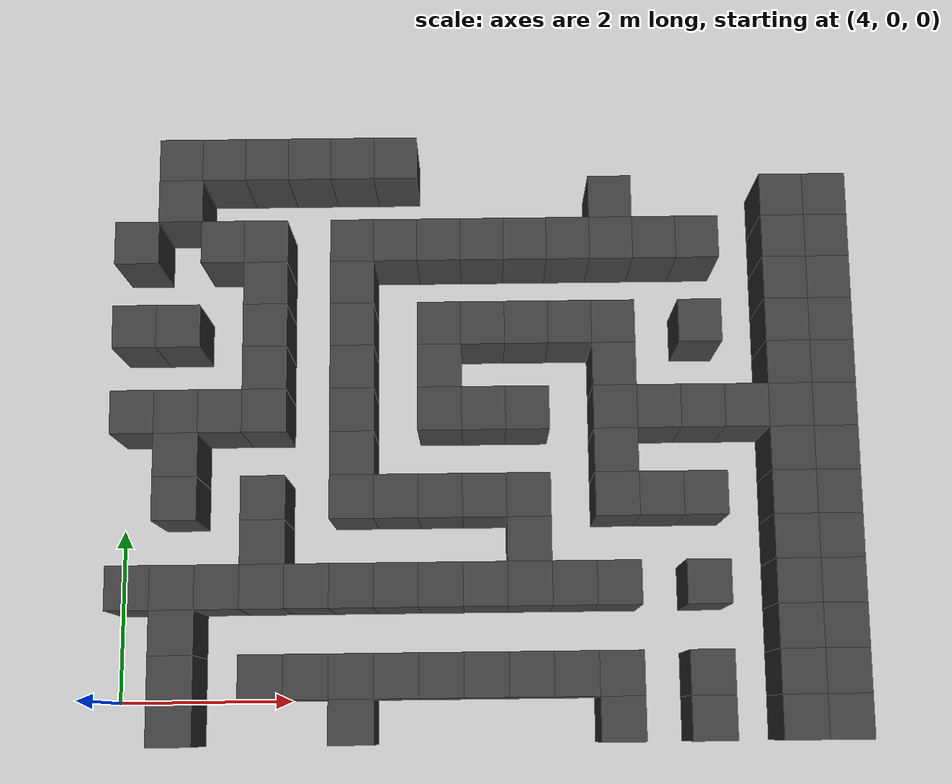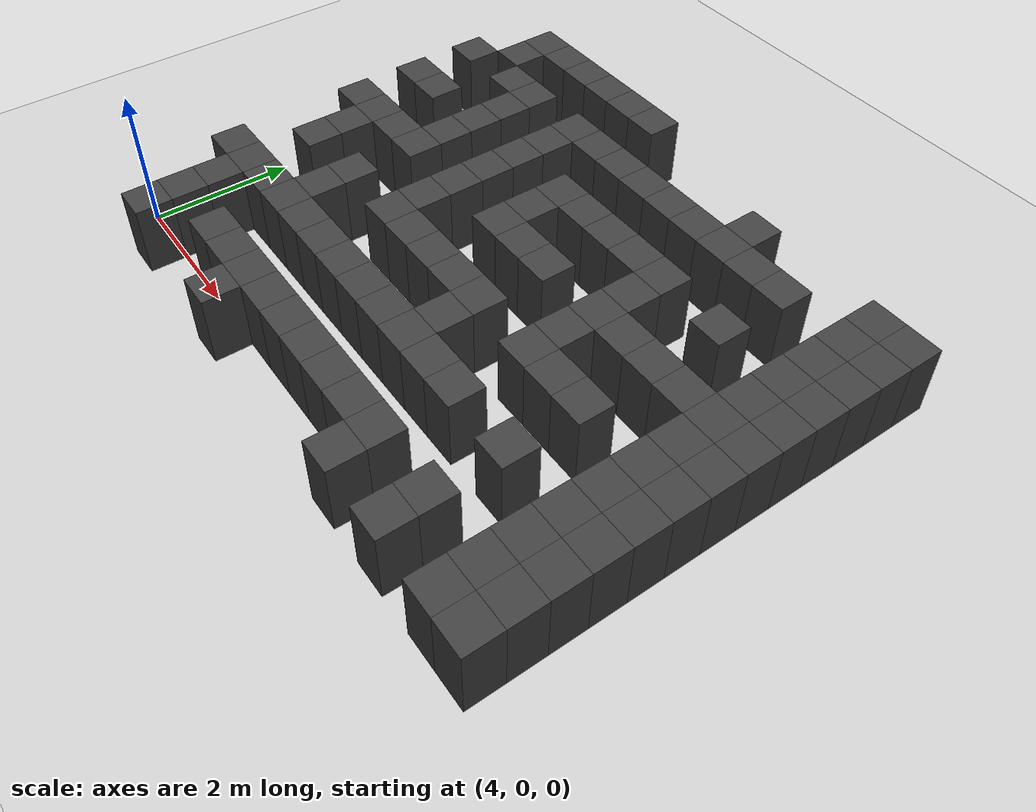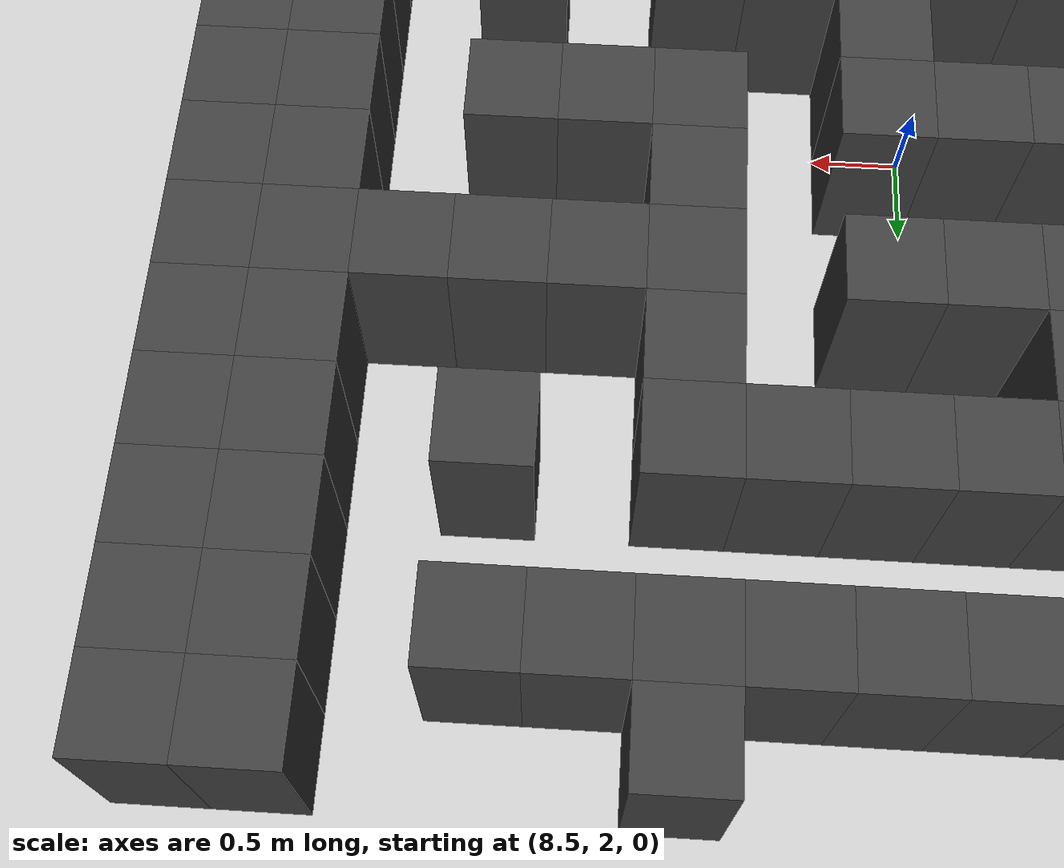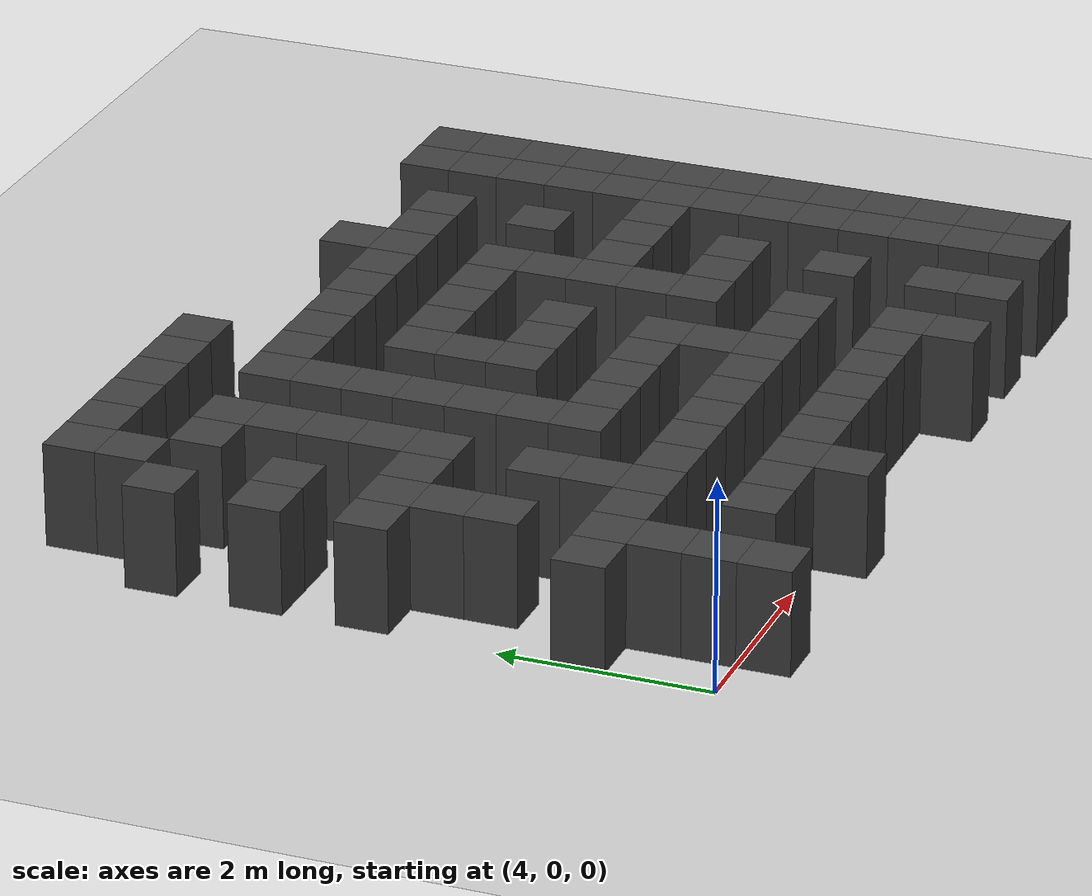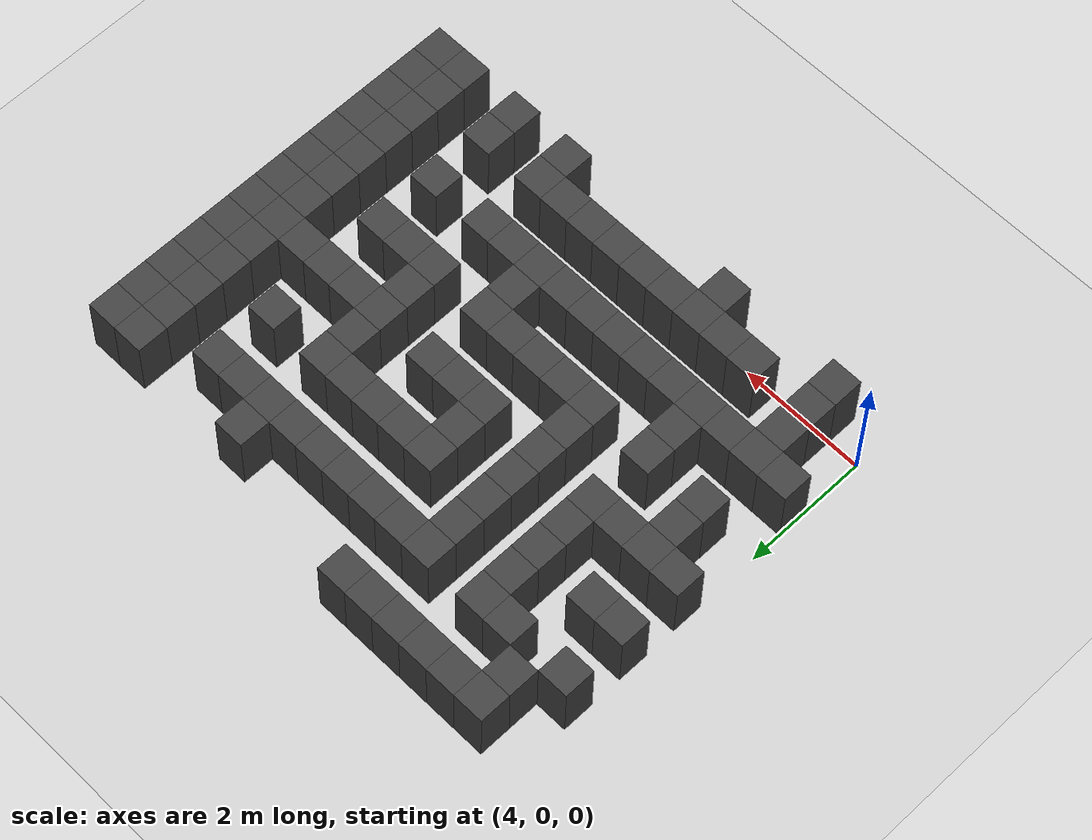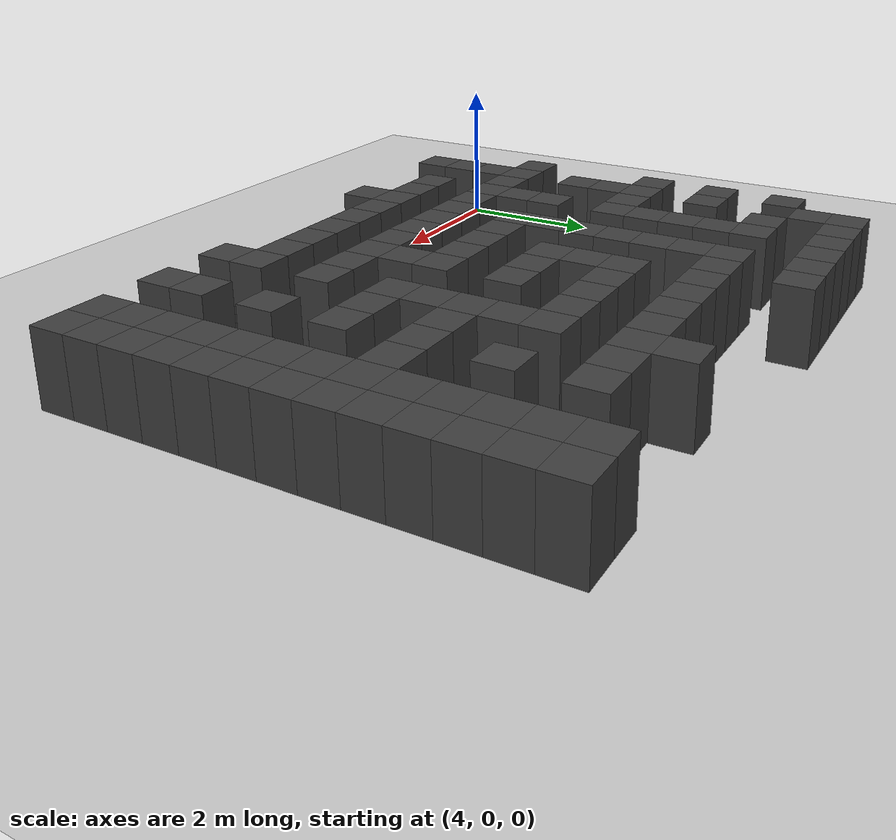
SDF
<sdf version="1.7">
 <world name="map_18228">
  <model name="ground_plane">
   <static>true</static>
   <link name="link">
    <collision name="collision">
     <geometry><plane><normal>0 0 1</normal><size>200 200</size></plane></geometry>
    </collision>
    <visual name="visual">
     <geometry><plane><normal>0 0 1</normal><size>200 200</size></plane></geometry>
     <material><ambient>0.8 0.8 0.8 1</ambient><diffuse>0.8 0.8 0.8 1</diffuse></material>
    </visual>
   </link>
  </model>
  <model name="maze_environment">
   <static>true</static>
   <link name="wall_325">
    <pose>4.750 6.250 0.500 0 0 0</pose>
    <collision name="col"><geometry><box><size>0.5 0.5 1.0</size></box></geometry></collision>
    <visual name="vis">
     <geometry><box><size>0.5 0.5 1.0</size></box></geometry>
     <material><ambient>0.15 0.15 0.15 1</ambient><diffuse>0.25 0.25 0.25 1</diffuse></material>
    </visual>
   </link>
   <link name="wall_326">
    <pose>5.250 6.250 0.500 0 0 0</pose>
    <collision name="col"><geometry><box><size>0.5 0.5 1.0</size></box></geometry></collision>
    <visual name="vis">
     <geometry><box><size>0.5 0.5 1.0</size></box></geometry>
     <material><ambient>0.15 0.15 0.15 1</ambient><diffuse>0.25 0.25 0.25 1</diffuse></material>
    </visual>
   </link>
   <link name="wall_327">
    <pose>5.750 6.250 0.500 0 0 0</pose>
    <collision name="col"><geometry><box><size>0.5 0.5 1.0</size></box></geometry></collision>
    <visual name="vis">
     <geometry><box><size>0.5 0.5 1.0</size></box></geometry>
     <material><ambient>0.15 0.15 0.15 1</ambient><diffuse>0.25 0.25 0.25 1</diffuse></material>
    </visual>
   </link>
   <link name="wall_328">
    <pose>6.250 6.250 0.500 0 0 0</pose>
    <collision name="col"><geometry><box><size>0.5 0.5 1.0</size></box></geometry></collision>
    <visual name="vis">
     <geometry><box><size>0.5 0.5 1.0</size></box></geometry>
     <material><ambient>0.15 0.15 0.15 1</ambient><diffuse>0.25 0.25 0.25 1</diffuse></material>
    </visual>
   </link>
   <link name="wall_329">
    <pose>6.750 6.250 0.500 0 0 0</pose>
    <collision name="col"><geometry><box><size>0.5 0.5 1.0</size></box></geometry></collision>
    <visual name="vis">
     <geometry><box><size>0.5 0.5 1.0</size></box></geometry>
     <material><ambient>0.15 0.15 0.15 1</ambient><diffuse>0.25 0.25 0.25 1</diffuse></material>
    </visual>
   </link>
   <link name="wall_330">
    <pose>7.250 6.250 0.500 0 0 0</pose>
    <collision name="col"><geometry><box><size>0.5 0.5 1.0</size></box></geometry></collision>
    <visual name="vis">
     <geometry><box><size>0.5 0.5 1.0</size></box></geometry>
     <material><ambient>0.15 0.15 0.15 1</ambient><diffuse>0.25 0.25 0.25 1</diffuse></material>
    </visual>
   </link>
   <link name="wall_347">
    <pose>4.750 5.750 0.500 0 0 0</pose>
    <collision name="col"><geometry><box><size>0.5 0.5 1.0</size></box></geometry></collision>
    <visual name="vis">
     <geometry><box><size>0.5 0.5 1.0</size></box></geometry>
     <material><ambient>0.15 0.15 0.15 1</ambient><diffuse>0.25 0.25 0.25 1</diffuse></material>
    </visual>
   </link>
   <link name="wall_348">
    <pose>9.750 5.750 0.500 0 0 0</pose>
    <collision name="col"><geometry><box><size>0.5 0.5 1.0</size></box></geometry></collision>
    <visual name="vis">
     <geometry><box><size>0.5 0.5 1.0</size></box></geometry>
     <material><ambient>0.15 0.15 0.15 1</ambient><diffuse>0.25 0.25 0.25 1</diffuse></material>
    </visual>
   </link>
   <link name="wall_349">
    <pose>11.750 5.750 0.500 0 0 0</pose>
    <collision name="col"><geometry><box><size>0.5 0.5 1.0</size></box></geometry></collision>
    <visual name="vis">
     <geometry><box><size>0.5 0.5 1.0</size></box></geometry>
     <material><ambient>0.15 0.15 0.15 1</ambient><diffuse>0.25 0.25 0.25 1</diffuse></material>
    </visual>
   </link>
   <link name="wall_350">
    <pose>12.250 5.750 0.500 0 0 0</pose>
    <collision name="col"><geometry><box><size>0.5 0.5 1.0</size></box></geometry></collision>
    <visual name="vis">
     <geometry><box><size>0.5 0.5 1.0</size></box></geometry>
     <material><ambient>0.15 0.15 0.15 1</ambient><diffuse>0.25 0.25 0.25 1</diffuse></material>
    </visual>
   </link>
   <link name="wall_377">
    <pose>4.250 5.250 0.500 0 0 0</pose>
    <collision name="col"><geometry><box><size>0.5 0.5 1.0</size></box></geometry></collision>
    <visual name="vis">
     <geometry><box><size>0.5 0.5 1.0</size></box></geometry>
     <material><ambient>0.15 0.15 0.15 1</ambient><diffuse>0.25 0.25 0.25 1</diffuse></material>
    </visual>
   </link>
   <link name="wall_378">
    <pose>5.250 5.250 0.500 0 0 0</pose>
    <collision name="col"><geometry><box><size>0.5 0.5 1.0</size></box></geometry></collision>
    <visual name="vis">
     <geometry><box><size>0.5 0.5 1.0</size></box></geometry>
     <material><ambient>0.15 0.15 0.15 1</ambient><diffuse>0.25 0.25 0.25 1</diffuse></material>
    </visual>
   </link>
   <link name="wall_379">
    <pose>5.750 5.250 0.500 0 0 0</pose>
    <collision name="col"><geometry><box><size>0.5 0.5 1.0</size></box></geometry></collision>
    <visual name="vis">
     <geometry><box><size>0.5 0.5 1.0</size></box></geometry>
     <material><ambient>0.15 0.15 0.15 1</ambient><diffuse>0.25 0.25 0.25 1</diffuse></material>
    </visual>
   </link>
   <link name="wall_380">
    <pose>6.750 5.250 0.500 0 0 0</pose>
    <collision name="col"><geometry><box><size>0.5 0.5 1.0</size></box></geometry></collision>
    <visual name="vis">
     <geometry><box><size>0.5 0.5 1.0</size></box></geometry>
     <material><ambient>0.15 0.15 0.15 1</ambient><diffuse>0.25 0.25 0.25 1</diffuse></material>
    </visual>
   </link>
   <link name="wall_381">
    <pose>7.250 5.250 0.500 0 0 0</pose>
    <collision name="col"><geometry><box><size>0.5 0.5 1.0</size></box></geometry></collision>
    <visual name="vis">
     <geometry><box><size>0.5 0.5 1.0</size></box></geometry>
     <material><ambient>0.15 0.15 0.15 1</ambient><diffuse>0.25 0.25 0.25 1</diffuse></material>
    </visual>
   </link>
   <link name="wall_382">
    <pose>7.750 5.250 0.500 0 0 0</pose>
    <collision name="col"><geometry><box><size>0.5 0.5 1.0</size></box></geometry></collision>
    <visual name="vis">
     <geometry><box><size>0.5 0.5 1.0</size></box></geometry>
     <material><ambient>0.15 0.15 0.15 1</ambient><diffuse>0.25 0.25 0.25 1</diffuse></material>
    </visual>
   </link>
   <link name="wall_383">
    <pose>8.250 5.250 0.500 0 0 0</pose>
    <collision name="col"><geometry><box><size>0.5 0.5 1.0</size></box></geometry></collision>
    <visual name="vis">
     <geometry><box><size>0.5 0.5 1.0</size></box></geometry>
     <material><ambient>0.15 0.15 0.15 1</ambient><diffuse>0.25 0.25 0.25 1</diffuse></material>
    </visual>
   </link>
   <link name="wall_384">
    <pose>8.750 5.250 0.500 0 0 0</pose>
    <collision name="col"><geometry><box><size>0.5 0.5 1.0</size></box></geometry></collision>
    <visual name="vis">
     <geometry><box><size>0.5 0.5 1.0</size></box></geometry>
     <material><ambient>0.15 0.15 0.15 1</ambient><diffuse>0.25 0.25 0.25 1</diffuse></material>
    </visual>
   </link>
   <link name="wall_385">
    <pose>9.250 5.250 0.500 0 0 0</pose>
    <collision name="col"><geometry><box><size>0.5 0.5 1.0</size></box></geometry></collision>
    <visual name="vis">
     <geometry><box><size>0.5 0.5 1.0</size></box></geometry>
     <material><ambient>0.15 0.15 0.15 1</ambient><diffuse>0.25 0.25 0.25 1</diffuse></material>
    </visual>
   </link>
   <link name="wall_386">
    <pose>9.750 5.250 0.500 0 0 0</pose>
    <collision name="col"><geometry><box><size>0.5 0.5 1.0</size></box></geometry></collision>
    <visual name="vis">
     <geometry><box><size>0.5 0.5 1.0</size></box></geometry>
     <material><ambient>0.15 0.15 0.15 1</ambient><diffuse>0.25 0.25 0.25 1</diffuse></material>
    </visual>
   </link>
   <link name="wall_387">
    <pose>10.250 5.250 0.500 0 0 0</pose>
    <collision name="col"><geometry><box><size>0.5 0.5 1.0</size></box></geometry></collision>
    <visual name="vis">
     <geometry><box><size>0.5 0.5 1.0</size></box></geometry>
     <material><ambient>0.15 0.15 0.15 1</ambient><diffuse>0.25 0.25 0.25 1</diffuse></material>
    </visual>
   </link>
   <link name="wall_388">
    <pose>10.750 5.250 0.500 0 0 0</pose>
    <collision name="col"><geometry><box><size>0.5 0.5 1.0</size></box></geometry></collision>
    <visual name="vis">
     <geometry><box><size>0.5 0.5 1.0</size></box></geometry>
     <material><ambient>0.15 0.15 0.15 1</ambient><diffuse>0.25 0.25 0.25 1</diffuse></material>
    </visual>
   </link>
   <link name="wall_389">
    <pose>11.750 5.250 0.500 0 0 0</pose>
    <collision name="col"><geometry><box><size>0.5 0.5 1.0</size></box></geometry></collision>
    <visual name="vis">
     <geometry><box><size>0.5 0.5 1.0</size></box></geometry>
     <material><ambient>0.15 0.15 0.15 1</ambient><diffuse>0.25 0.25 0.25 1</diffuse></material>
    </visual>
   </link>
   <link name="wall_390">
    <pose>12.250 5.250 0.500 0 0 0</pose>
    <collision name="col"><geometry><box><size>0.5 0.5 1.0</size></box></geometry></collision>
    <visual name="vis">
     <geometry><box><size>0.5 0.5 1.0</size></box></geometry>
     <material><ambient>0.15 0.15 0.15 1</ambient><diffuse>0.25 0.25 0.25 1</diffuse></material>
    </visual>
   </link>
   <link name="wall_397">
    <pose>5.750 4.750 0.500 0 0 0</pose>
    <collision name="col"><geometry><box><size>0.5 0.5 1.0</size></box></geometry></collision>
    <visual name="vis">
     <geometry><box><size>0.5 0.5 1.0</size></box></geometry>
     <material><ambient>0.15 0.15 0.15 1</ambient><diffuse>0.25 0.25 0.25 1</diffuse></material>
    </visual>
   </link>
   <link name="wall_398">
    <pose>6.750 4.750 0.500 0 0 0</pose>
    <collision name="col"><geometry><box><size>0.5 0.5 1.0</size></box></geometry></collision>
    <visual name="vis">
     <geometry><box><size>0.5 0.5 1.0</size></box></geometry>
     <material><ambient>0.15 0.15 0.15 1</ambient><diffuse>0.25 0.25 0.25 1</diffuse></material>
    </visual>
   </link>
   <link name="wall_399">
    <pose>11.750 4.750 0.500 0 0 0</pose>
    <collision name="col"><geometry><box><size>0.5 0.5 1.0</size></box></geometry></collision>
    <visual name="vis">
     <geometry><box><size>0.5 0.5 1.0</size></box></geometry>
     <material><ambient>0.15 0.15 0.15 1</ambient><diffuse>0.25 0.25 0.25 1</diffuse></material>
    </visual>
   </link>
   <link name="wall_400">
    <pose>12.250 4.750 0.500 0 0 0</pose>
    <collision name="col"><geometry><box><size>0.5 0.5 1.0</size></box></geometry></collision>
    <visual name="vis">
     <geometry><box><size>0.5 0.5 1.0</size></box></geometry>
     <material><ambient>0.15 0.15 0.15 1</ambient><diffuse>0.25 0.25 0.25 1</diffuse></material>
    </visual>
   </link>
   <link name="wall_424">
    <pose>4.250 4.250 0.500 0 0 0</pose>
    <collision name="col"><geometry><box><size>0.5 0.5 1.0</size></box></geometry></collision>
    <visual name="vis">
     <geometry><box><size>0.5 0.5 1.0</size></box></geometry>
     <material><ambient>0.15 0.15 0.15 1</ambient><diffuse>0.25 0.25 0.25 1</diffuse></material>
    </visual>
   </link>
   <link name="wall_425">
    <pose>4.750 4.250 0.500 0 0 0</pose>
    <collision name="col"><geometry><box><size>0.5 0.5 1.0</size></box></geometry></collision>
    <visual name="vis">
     <geometry><box><size>0.5 0.5 1.0</size></box></geometry>
     <material><ambient>0.15 0.15 0.15 1</ambient><diffuse>0.25 0.25 0.25 1</diffuse></material>
    </visual>
   </link>
   <link name="wall_426">
    <pose>5.750 4.250 0.500 0 0 0</pose>
    <collision name="col"><geometry><box><size>0.5 0.5 1.0</size></box></geometry></collision>
    <visual name="vis">
     <geometry><box><size>0.5 0.5 1.0</size></box></geometry>
     <material><ambient>0.15 0.15 0.15 1</ambient><diffuse>0.25 0.25 0.25 1</diffuse></material>
    </visual>
   </link>
   <link name="wall_427">
    <pose>6.750 4.250 0.500 0 0 0</pose>
    <collision name="col"><geometry><box><size>0.5 0.5 1.0</size></box></geometry></collision>
    <visual name="vis">
     <geometry><box><size>0.5 0.5 1.0</size></box></geometry>
     <material><ambient>0.15 0.15 0.15 1</ambient><diffuse>0.25 0.25 0.25 1</diffuse></material>
    </visual>
   </link>
   <link name="wall_428">
    <pose>7.750 4.250 0.500 0 0 0</pose>
    <collision name="col"><geometry><box><size>0.5 0.5 1.0</size></box></geometry></collision>
    <visual name="vis">
     <geometry><box><size>0.5 0.5 1.0</size></box></geometry>
     <material><ambient>0.15 0.15 0.15 1</ambient><diffuse>0.25 0.25 0.25 1</diffuse></material>
    </visual>
   </link>
   <link name="wall_429">
    <pose>8.250 4.250 0.500 0 0 0</pose>
    <collision name="col"><geometry><box><size>0.5 0.5 1.0</size></box></geometry></collision>
    <visual name="vis">
     <geometry><box><size>0.5 0.5 1.0</size></box></geometry>
     <material><ambient>0.15 0.15 0.15 1</ambient><diffuse>0.25 0.25 0.25 1</diffuse></material>
    </visual>
   </link>
   <link name="wall_430">
    <pose>8.750 4.250 0.500 0 0 0</pose>
    <collision name="col"><geometry><box><size>0.5 0.5 1.0</size></box></geometry></collision>
    <visual name="vis">
     <geometry><box><size>0.5 0.5 1.0</size></box></geometry>
     <material><ambient>0.15 0.15 0.15 1</ambient><diffuse>0.25 0.25 0.25 1</diffuse></material>
    </visual>
   </link>
   <link name="wall_431">
    <pose>9.250 4.250 0.500 0 0 0</pose>
    <collision name="col"><geometry><box><size>0.5 0.5 1.0</size></box></geometry></collision>
    <visual name="vis">
     <geometry><box><size>0.5 0.5 1.0</size></box></geometry>
     <material><ambient>0.15 0.15 0.15 1</ambient><diffuse>0.25 0.25 0.25 1</diffuse></material>
    </visual>
   </link>
   <link name="wall_432">
    <pose>9.750 4.250 0.500 0 0 0</pose>
    <collision name="col"><geometry><box><size>0.5 0.5 1.0</size></box></geometry></collision>
    <visual name="vis">
     <geometry><box><size>0.5 0.5 1.0</size></box></geometry>
     <material><ambient>0.15 0.15 0.15 1</ambient><diffuse>0.25 0.25 0.25 1</diffuse></material>
    </visual>
   </link>
   <link name="wall_433">
    <pose>10.750 4.250 0.500 0 0 0</pose>
    <collision name="col"><geometry><box><size>0.5 0.5 1.0</size></box></geometry></collision>
    <visual name="vis">
     <geometry><box><size>0.5 0.5 1.0</size></box></geometry>
     <material><ambient>0.15 0.15 0.15 1</ambient><diffuse>0.25 0.25 0.25 1</diffuse></material>
    </visual>
   </link>
   <link name="wall_434">
    <pose>11.750 4.250 0.500 0 0 0</pose>
    <collision name="col"><geometry><box><size>0.5 0.5 1.0</size></box></geometry></collision>
    <visual name="vis">
     <geometry><box><size>0.5 0.5 1.0</size></box></geometry>
     <material><ambient>0.15 0.15 0.15 1</ambient><diffuse>0.25 0.25 0.25 1</diffuse></material>
    </visual>
   </link>
   <link name="wall_435">
    <pose>12.250 4.250 0.500 0 0 0</pose>
    <collision name="col"><geometry><box><size>0.5 0.5 1.0</size></box></geometry></collision>
    <visual name="vis">
     <geometry><box><size>0.5 0.5 1.0</size></box></geometry>
     <material><ambient>0.15 0.15 0.15 1</ambient><diffuse>0.25 0.25 0.25 1</diffuse></material>
    </visual>
   </link>
   <link name="wall_443">
    <pose>5.750 3.750 0.500 0 0 0</pose>
    <collision name="col"><geometry><box><size>0.5 0.5 1.0</size></box></geometry></collision>
    <visual name="vis">
     <geometry><box><size>0.5 0.5 1.0</size></box></geometry>
     <material><ambient>0.15 0.15 0.15 1</ambient><diffuse>0.25 0.25 0.25 1</diffuse></material>
    </visual>
   </link>
   <link name="wall_444">
    <pose>6.750 3.750 0.500 0 0 0</pose>
    <collision name="col"><geometry><box><size>0.5 0.5 1.0</size></box></geometry></collision>
    <visual name="vis">
     <geometry><box><size>0.5 0.5 1.0</size></box></geometry>
     <material><ambient>0.15 0.15 0.15 1</ambient><diffuse>0.25 0.25 0.25 1</diffuse></material>
    </visual>
   </link>
   <link name="wall_445">
    <pose>7.750 3.750 0.500 0 0 0</pose>
    <collision name="col"><geometry><box><size>0.5 0.5 1.0</size></box></geometry></collision>
    <visual name="vis">
     <geometry><box><size>0.5 0.5 1.0</size></box></geometry>
     <material><ambient>0.15 0.15 0.15 1</ambient><diffuse>0.25 0.25 0.25 1</diffuse></material>
    </visual>
   </link>
   <link name="wall_446">
    <pose>9.750 3.750 0.500 0 0 0</pose>
    <collision name="col"><geometry><box><size>0.5 0.5 1.0</size></box></geometry></collision>
    <visual name="vis">
     <geometry><box><size>0.5 0.5 1.0</size></box></geometry>
     <material><ambient>0.15 0.15 0.15 1</ambient><diffuse>0.25 0.25 0.25 1</diffuse></material>
    </visual>
   </link>
   <link name="wall_447">
    <pose>11.750 3.750 0.500 0 0 0</pose>
    <collision name="col"><geometry><box><size>0.5 0.5 1.0</size></box></geometry></collision>
    <visual name="vis">
     <geometry><box><size>0.5 0.5 1.0</size></box></geometry>
     <material><ambient>0.15 0.15 0.15 1</ambient><diffuse>0.25 0.25 0.25 1</diffuse></material>
    </visual>
   </link>
   <link name="wall_448">
    <pose>12.250 3.750 0.500 0 0 0</pose>
    <collision name="col"><geometry><box><size>0.5 0.5 1.0</size></box></geometry></collision>
    <visual name="vis">
     <geometry><box><size>0.5 0.5 1.0</size></box></geometry>
     <material><ambient>0.15 0.15 0.15 1</ambient><diffuse>0.25 0.25 0.25 1</diffuse></material>
    </visual>
   </link>
   <link name="wall_475">
    <pose>4.250 3.250 0.500 0 0 0</pose>
    <collision name="col"><geometry><box><size>0.5 0.5 1.0</size></box></geometry></collision>
    <visual name="vis">
     <geometry><box><size>0.5 0.5 1.0</size></box></geometry>
     <material><ambient>0.15 0.15 0.15 1</ambient><diffuse>0.25 0.25 0.25 1</diffuse></material>
    </visual>
   </link>
   <link name="wall_476">
    <pose>4.750 3.250 0.500 0 0 0</pose>
    <collision name="col"><geometry><box><size>0.5 0.5 1.0</size></box></geometry></collision>
    <visual name="vis">
     <geometry><box><size>0.5 0.5 1.0</size></box></geometry>
     <material><ambient>0.15 0.15 0.15 1</ambient><diffuse>0.25 0.25 0.25 1</diffuse></material>
    </visual>
   </link>
   <link name="wall_477">
    <pose>5.250 3.250 0.500 0 0 0</pose>
    <collision name="col"><geometry><box><size>0.5 0.5 1.0</size></box></geometry></collision>
    <visual name="vis">
     <geometry><box><size>0.5 0.5 1.0</size></box></geometry>
     <material><ambient>0.15 0.15 0.15 1</ambient><diffuse>0.25 0.25 0.25 1</diffuse></material>
    </visual>
   </link>
   <link name="wall_478">
    <pose>5.750 3.250 0.500 0 0 0</pose>
    <collision name="col"><geometry><box><size>0.5 0.5 1.0</size></box></geometry></collision>
    <visual name="vis">
     <geometry><box><size>0.5 0.5 1.0</size></box></geometry>
     <material><ambient>0.15 0.15 0.15 1</ambient><diffuse>0.25 0.25 0.25 1</diffuse></material>
    </visual>
   </link>
   <link name="wall_479">
    <pose>6.750 3.250 0.500 0 0 0</pose>
    <collision name="col"><geometry><box><size>0.5 0.5 1.0</size></box></geometry></collision>
    <visual name="vis">
     <geometry><box><size>0.5 0.5 1.0</size></box></geometry>
     <material><ambient>0.15 0.15 0.15 1</ambient><diffuse>0.25 0.25 0.25 1</diffuse></material>
    </visual>
   </link>
   <link name="wall_480">
    <pose>7.750 3.250 0.500 0 0 0</pose>
    <collision name="col"><geometry><box><size>0.5 0.5 1.0</size></box></geometry></collision>
    <visual name="vis">
     <geometry><box><size>0.5 0.5 1.0</size></box></geometry>
     <material><ambient>0.15 0.15 0.15 1</ambient><diffuse>0.25 0.25 0.25 1</diffuse></material>
    </visual>
   </link>
   <link name="wall_481">
    <pose>8.250 3.250 0.500 0 0 0</pose>
    <collision name="col"><geometry><box><size>0.5 0.5 1.0</size></box></geometry></collision>
    <visual name="vis">
     <geometry><box><size>0.5 0.5 1.0</size></box></geometry>
     <material><ambient>0.15 0.15 0.15 1</ambient><diffuse>0.25 0.25 0.25 1</diffuse></material>
    </visual>
   </link>
   <link name="wall_482">
    <pose>8.750 3.250 0.500 0 0 0</pose>
    <collision name="col"><geometry><box><size>0.5 0.5 1.0</size></box></geometry></collision>
    <visual name="vis">
     <geometry><box><size>0.5 0.5 1.0</size></box></geometry>
     <material><ambient>0.15 0.15 0.15 1</ambient><diffuse>0.25 0.25 0.25 1</diffuse></material>
    </visual>
   </link>
   <link name="wall_483">
    <pose>9.750 3.250 0.500 0 0 0</pose>
    <collision name="col"><geometry><box><size>0.5 0.5 1.0</size></box></geometry></collision>
    <visual name="vis">
     <geometry><box><size>0.5 0.5 1.0</size></box></geometry>
     <material><ambient>0.15 0.15 0.15 1</ambient><diffuse>0.25 0.25 0.25 1</diffuse></material>
    </visual>
   </link>
   <link name="wall_484">
    <pose>10.250 3.250 0.500 0 0 0</pose>
    <collision name="col"><geometry><box><size>0.5 0.5 1.0</size></box></geometry></collision>
    <visual name="vis">
     <geometry><box><size>0.5 0.5 1.0</size></box></geometry>
     <material><ambient>0.15 0.15 0.15 1</ambient><diffuse>0.25 0.25 0.25 1</diffuse></material>
    </visual>
   </link>
   <link name="wall_485">
    <pose>10.750 3.250 0.500 0 0 0</pose>
    <collision name="col"><geometry><box><size>0.5 0.5 1.0</size></box></geometry></collision>
    <visual name="vis">
     <geometry><box><size>0.5 0.5 1.0</size></box></geometry>
     <material><ambient>0.15 0.15 0.15 1</ambient><diffuse>0.25 0.25 0.25 1</diffuse></material>
    </visual>
   </link>
   <link name="wall_486">
    <pose>11.250 3.250 0.500 0 0 0</pose>
    <collision name="col"><geometry><box><size>0.5 0.5 1.0</size></box></geometry></collision>
    <visual name="vis">
     <geometry><box><size>0.5 0.5 1.0</size></box></geometry>
     <material><ambient>0.15 0.15 0.15 1</ambient><diffuse>0.25 0.25 0.25 1</diffuse></material>
    </visual>
   </link>
   <link name="wall_487">
    <pose>11.750 3.250 0.500 0 0 0</pose>
    <collision name="col"><geometry><box><size>0.5 0.5 1.0</size></box></geometry></collision>
    <visual name="vis">
     <geometry><box><size>0.5 0.5 1.0</size></box></geometry>
     <material><ambient>0.15 0.15 0.15 1</ambient><diffuse>0.25 0.25 0.25 1</diffuse></material>
    </visual>
   </link>
   <link name="wall_488">
    <pose>12.250 3.250 0.500 0 0 0</pose>
    <collision name="col"><geometry><box><size>0.5 0.5 1.0</size></box></geometry></collision>
    <visual name="vis">
     <geometry><box><size>0.5 0.5 1.0</size></box></geometry>
     <material><ambient>0.15 0.15 0.15 1</ambient><diffuse>0.25 0.25 0.25 1</diffuse></material>
    </visual>
   </link>
   <link name="wall_496">
    <pose>4.750 2.750 0.500 0 0 0</pose>
    <collision name="col"><geometry><box><size>0.5 0.5 1.0</size></box></geometry></collision>
    <visual name="vis">
     <geometry><box><size>0.5 0.5 1.0</size></box></geometry>
     <material><ambient>0.15 0.15 0.15 1</ambient><diffuse>0.25 0.25 0.25 1</diffuse></material>
    </visual>
   </link>
   <link name="wall_497">
    <pose>6.750 2.750 0.500 0 0 0</pose>
    <collision name="col"><geometry><box><size>0.5 0.5 1.0</size></box></geometry></collision>
    <visual name="vis">
     <geometry><box><size>0.5 0.5 1.0</size></box></geometry>
     <material><ambient>0.15 0.15 0.15 1</ambient><diffuse>0.25 0.25 0.25 1</diffuse></material>
    </visual>
   </link>
   <link name="wall_498">
    <pose>9.750 2.750 0.500 0 0 0</pose>
    <collision name="col"><geometry><box><size>0.5 0.5 1.0</size></box></geometry></collision>
    <visual name="vis">
     <geometry><box><size>0.5 0.5 1.0</size></box></geometry>
     <material><ambient>0.15 0.15 0.15 1</ambient><diffuse>0.25 0.25 0.25 1</diffuse></material>
    </visual>
   </link>
   <link name="wall_499">
    <pose>11.750 2.750 0.500 0 0 0</pose>
    <collision name="col"><geometry><box><size>0.5 0.5 1.0</size></box></geometry></collision>
    <visual name="vis">
     <geometry><box><size>0.5 0.5 1.0</size></box></geometry>
     <material><ambient>0.15 0.15 0.15 1</ambient><diffuse>0.25 0.25 0.25 1</diffuse></material>
    </visual>
   </link>
   <link name="wall_500">
    <pose>12.250 2.750 0.500 0 0 0</pose>
    <collision name="col"><geometry><box><size>0.5 0.5 1.0</size></box></geometry></collision>
    <visual name="vis">
     <geometry><box><size>0.5 0.5 1.0</size></box></geometry>
     <material><ambient>0.15 0.15 0.15 1</ambient><diffuse>0.25 0.25 0.25 1</diffuse></material>
    </visual>
   </link>
   <link name="wall_527">
    <pose>4.750 2.250 0.500 0 0 0</pose>
    <collision name="col"><geometry><box><size>0.5 0.5 1.0</size></box></geometry></collision>
    <visual name="vis">
     <geometry><box><size>0.5 0.5 1.0</size></box></geometry>
     <material><ambient>0.15 0.15 0.15 1</ambient><diffuse>0.25 0.25 0.25 1</diffuse></material>
    </visual>
   </link>
   <link name="wall_528">
    <pose>5.750 2.250 0.500 0 0 0</pose>
    <collision name="col"><geometry><box><size>0.5 0.5 1.0</size></box></geometry></collision>
    <visual name="vis">
     <geometry><box><size>0.5 0.5 1.0</size></box></geometry>
     <material><ambient>0.15 0.15 0.15 1</ambient><diffuse>0.25 0.25 0.25 1</diffuse></material>
    </visual>
   </link>
   <link name="wall_529">
    <pose>6.750 2.250 0.500 0 0 0</pose>
    <collision name="col"><geometry><box><size>0.5 0.5 1.0</size></box></geometry></collision>
    <visual name="vis">
     <geometry><box><size>0.5 0.5 1.0</size></box></geometry>
     <material><ambient>0.15 0.15 0.15 1</ambient><diffuse>0.25 0.25 0.25 1</diffuse></material>
    </visual>
   </link>
   <link name="wall_530">
    <pose>7.250 2.250 0.500 0 0 0</pose>
    <collision name="col"><geometry><box><size>0.5 0.5 1.0</size></box></geometry></collision>
    <visual name="vis">
     <geometry><box><size>0.5 0.5 1.0</size></box></geometry>
     <material><ambient>0.15 0.15 0.15 1</ambient><diffuse>0.25 0.25 0.25 1</diffuse></material>
    </visual>
   </link>
   <link name="wall_531">
    <pose>7.750 2.250 0.500 0 0 0</pose>
    <collision name="col"><geometry><box><size>0.5 0.5 1.0</size></box></geometry></collision>
    <visual name="vis">
     <geometry><box><size>0.5 0.5 1.0</size></box></geometry>
     <material><ambient>0.15 0.15 0.15 1</ambient><diffuse>0.25 0.25 0.25 1</diffuse></material>
    </visual>
   </link>
   <link name="wall_532">
    <pose>8.250 2.250 0.500 0 0 0</pose>
    <collision name="col"><geometry><box><size>0.5 0.5 1.0</size></box></geometry></collision>
    <visual name="vis">
     <geometry><box><size>0.5 0.5 1.0</size></box></geometry>
     <material><ambient>0.15 0.15 0.15 1</ambient><diffuse>0.25 0.25 0.25 1</diffuse></material>
    </visual>
   </link>
   <link name="wall_533">
    <pose>8.750 2.250 0.500 0 0 0</pose>
    <collision name="col"><geometry><box><size>0.5 0.5 1.0</size></box></geometry></collision>
    <visual name="vis">
     <geometry><box><size>0.5 0.5 1.0</size></box></geometry>
     <material><ambient>0.15 0.15 0.15 1</ambient><diffuse>0.25 0.25 0.25 1</diffuse></material>
    </visual>
   </link>
   <link name="wall_534">
    <pose>9.750 2.250 0.500 0 0 0</pose>
    <collision name="col"><geometry><box><size>0.5 0.5 1.0</size></box></geometry></collision>
    <visual name="vis">
     <geometry><box><size>0.5 0.5 1.0</size></box></geometry>
     <material><ambient>0.15 0.15 0.15 1</ambient><diffuse>0.25 0.25 0.25 1</diffuse></material>
    </visual>
   </link>
   <link name="wall_535">
    <pose>10.250 2.250 0.500 0 0 0</pose>
    <collision name="col"><geometry><box><size>0.5 0.5 1.0</size></box></geometry></collision>
    <visual name="vis">
     <geometry><box><size>0.5 0.5 1.0</size></box></geometry>
     <material><ambient>0.15 0.15 0.15 1</ambient><diffuse>0.25 0.25 0.25 1</diffuse></material>
    </visual>
   </link>
   <link name="wall_536">
    <pose>10.750 2.250 0.500 0 0 0</pose>
    <collision name="col"><geometry><box><size>0.5 0.5 1.0</size></box></geometry></collision>
    <visual name="vis">
     <geometry><box><size>0.5 0.5 1.0</size></box></geometry>
     <material><ambient>0.15 0.15 0.15 1</ambient><diffuse>0.25 0.25 0.25 1</diffuse></material>
    </visual>
   </link>
   <link name="wall_537">
    <pose>11.750 2.250 0.500 0 0 0</pose>
    <collision name="col"><geometry><box><size>0.5 0.5 1.0</size></box></geometry></collision>
    <visual name="vis">
     <geometry><box><size>0.5 0.5 1.0</size></box></geometry>
     <material><ambient>0.15 0.15 0.15 1</ambient><diffuse>0.25 0.25 0.25 1</diffuse></material>
    </visual>
   </link>
   <link name="wall_538">
    <pose>12.250 2.250 0.500 0 0 0</pose>
    <collision name="col"><geometry><box><size>0.5 0.5 1.0</size></box></geometry></collision>
    <visual name="vis">
     <geometry><box><size>0.5 0.5 1.0</size></box></geometry>
     <material><ambient>0.15 0.15 0.15 1</ambient><diffuse>0.25 0.25 0.25 1</diffuse></material>
    </visual>
   </link>
   <link name="wall_547">
    <pose>5.750 1.750 0.500 0 0 0</pose>
    <collision name="col"><geometry><box><size>0.5 0.5 1.0</size></box></geometry></collision>
    <visual name="vis">
     <geometry><box><size>0.5 0.5 1.0</size></box></geometry>
     <material><ambient>0.15 0.15 0.15 1</ambient><diffuse>0.25 0.25 0.25 1</diffuse></material>
    </visual>
   </link>
   <link name="wall_548">
    <pose>8.750 1.750 0.500 0 0 0</pose>
    <collision name="col"><geometry><box><size>0.5 0.5 1.0</size></box></geometry></collision>
    <visual name="vis">
     <geometry><box><size>0.5 0.5 1.0</size></box></geometry>
     <material><ambient>0.15 0.15 0.15 1</ambient><diffuse>0.25 0.25 0.25 1</diffuse></material>
    </visual>
   </link>
   <link name="wall_549">
    <pose>11.750 1.750 0.500 0 0 0</pose>
    <collision name="col"><geometry><box><size>0.5 0.5 1.0</size></box></geometry></collision>
    <visual name="vis">
     <geometry><box><size>0.5 0.5 1.0</size></box></geometry>
     <material><ambient>0.15 0.15 0.15 1</ambient><diffuse>0.25 0.25 0.25 1</diffuse></material>
    </visual>
   </link>
   <link name="wall_550">
    <pose>12.250 1.750 0.500 0 0 0</pose>
    <collision name="col"><geometry><box><size>0.5 0.5 1.0</size></box></geometry></collision>
    <visual name="vis">
     <geometry><box><size>0.5 0.5 1.0</size></box></geometry>
     <material><ambient>0.15 0.15 0.15 1</ambient><diffuse>0.25 0.25 0.25 1</diffuse></material>
    </visual>
   </link>
   <link name="wall_572">
    <pose>4.250 1.250 0.500 0 0 0</pose>
    <collision name="col"><geometry><box><size>0.5 0.5 1.0</size></box></geometry></collision>
    <visual name="vis">
     <geometry><box><size>0.5 0.5 1.0</size></box></geometry>
     <material><ambient>0.15 0.15 0.15 1</ambient><diffuse>0.25 0.25 0.25 1</diffuse></material>
    </visual>
   </link>
   <link name="wall_573">
    <pose>4.750 1.250 0.500 0 0 0</pose>
    <collision name="col"><geometry><box><size>0.5 0.5 1.0</size></box></geometry></collision>
    <visual name="vis">
     <geometry><box><size>0.5 0.5 1.0</size></box></geometry>
     <material><ambient>0.15 0.15 0.15 1</ambient><diffuse>0.25 0.25 0.25 1</diffuse></material>
    </visual>
   </link>
   <link name="wall_574">
    <pose>5.250 1.250 0.500 0 0 0</pose>
    <collision name="col"><geometry><box><size>0.5 0.5 1.0</size></box></geometry></collision>
    <visual name="vis">
     <geometry><box><size>0.5 0.5 1.0</size></box></geometry>
     <material><ambient>0.15 0.15 0.15 1</ambient><diffuse>0.25 0.25 0.25 1</diffuse></material>
    </visual>
   </link>
   <link name="wall_575">
    <pose>5.750 1.250 0.500 0 0 0</pose>
    <collision name="col"><geometry><box><size>0.5 0.5 1.0</size></box></geometry></collision>
    <visual name="vis">
     <geometry><box><size>0.5 0.5 1.0</size></box></geometry>
     <material><ambient>0.15 0.15 0.15 1</ambient><diffuse>0.25 0.25 0.25 1</diffuse></material>
    </visual>
   </link>
   <link name="wall_576">
    <pose>6.250 1.250 0.500 0 0 0</pose>
    <collision name="col"><geometry><box><size>0.5 0.5 1.0</size></box></geometry></collision>
    <visual name="vis">
     <geometry><box><size>0.5 0.5 1.0</size></box></geometry>
     <material><ambient>0.15 0.15 0.15 1</ambient><diffuse>0.25 0.25 0.25 1</diffuse></material>
    </visual>
   </link>
   <link name="wall_577">
    <pose>6.750 1.250 0.500 0 0 0</pose>
    <collision name="col"><geometry><box><size>0.5 0.5 1.0</size></box></geometry></collision>
    <visual name="vis">
     <geometry><box><size>0.5 0.5 1.0</size></box></geometry>
     <material><ambient>0.15 0.15 0.15 1</ambient><diffuse>0.25 0.25 0.25 1</diffuse></material>
    </visual>
   </link>
   <link name="wall_578">
    <pose>7.250 1.250 0.500 0 0 0</pose>
    <collision name="col"><geometry><box><size>0.5 0.5 1.0</size></box></geometry></collision>
    <visual name="vis">
     <geometry><box><size>0.5 0.5 1.0</size></box></geometry>
     <material><ambient>0.15 0.15 0.15 1</ambient><diffuse>0.25 0.25 0.25 1</diffuse></material>
    </visual>
   </link>
   <link name="wall_579">
    <pose>7.750 1.250 0.500 0 0 0</pose>
    <collision name="col"><geometry><box><size>0.5 0.5 1.0</size></box></geometry></collision>
    <visual name="vis">
     <geometry><box><size>0.5 0.5 1.0</size></box></geometry>
     <material><ambient>0.15 0.15 0.15 1</ambient><diffuse>0.25 0.25 0.25 1</diffuse></material>
    </visual>
   </link>
   <link name="wall_580">
    <pose>8.250 1.250 0.500 0 0 0</pose>
    <collision name="col"><geometry><box><size>0.5 0.5 1.0</size></box></geometry></collision>
    <visual name="vis">
     <geometry><box><size>0.5 0.5 1.0</size></box></geometry>
     <material><ambient>0.15 0.15 0.15 1</ambient><diffuse>0.25 0.25 0.25 1</diffuse></material>
    </visual>
   </link>
   <link name="wall_581">
    <pose>8.750 1.250 0.500 0 0 0</pose>
    <collision name="col"><geometry><box><size>0.5 0.5 1.0</size></box></geometry></collision>
    <visual name="vis">
     <geometry><box><size>0.5 0.5 1.0</size></box></geometry>
     <material><ambient>0.15 0.15 0.15 1</ambient><diffuse>0.25 0.25 0.25 1</diffuse></material>
    </visual>
   </link>
   <link name="wall_582">
    <pose>9.250 1.250 0.500 0 0 0</pose>
    <collision name="col"><geometry><box><size>0.5 0.5 1.0</size></box></geometry></collision>
    <visual name="vis">
     <geometry><box><size>0.5 0.5 1.0</size></box></geometry>
     <material><ambient>0.15 0.15 0.15 1</ambient><diffuse>0.25 0.25 0.25 1</diffuse></material>
    </visual>
   </link>
   <link name="wall_583">
    <pose>9.750 1.250 0.500 0 0 0</pose>
    <collision name="col"><geometry><box><size>0.5 0.5 1.0</size></box></geometry></collision>
    <visual name="vis">
     <geometry><box><size>0.5 0.5 1.0</size></box></geometry>
     <material><ambient>0.15 0.15 0.15 1</ambient><diffuse>0.25 0.25 0.25 1</diffuse></material>
    </visual>
   </link>
   <link name="wall_584">
    <pose>10.750 1.250 0.500 0 0 0</pose>
    <collision name="col"><geometry><box><size>0.5 0.5 1.0</size></box></geometry></collision>
    <visual name="vis">
     <geometry><box><size>0.5 0.5 1.0</size></box></geometry>
     <material><ambient>0.15 0.15 0.15 1</ambient><diffuse>0.25 0.25 0.25 1</diffuse></material>
    </visual>
   </link>
   <link name="wall_585">
    <pose>11.750 1.250 0.500 0 0 0</pose>
    <collision name="col"><geometry><box><size>0.5 0.5 1.0</size></box></geometry></collision>
    <visual name="vis">
     <geometry><box><size>0.5 0.5 1.0</size></box></geometry>
     <material><ambient>0.15 0.15 0.15 1</ambient><diffuse>0.25 0.25 0.25 1</diffuse></material>
    </visual>
   </link>
   <link name="wall_586">
    <pose>12.250 1.250 0.500 0 0 0</pose>
    <collision name="col"><geometry><box><size>0.5 0.5 1.0</size></box></geometry></collision>
    <visual name="vis">
     <geometry><box><size>0.5 0.5 1.0</size></box></geometry>
     <material><ambient>0.15 0.15 0.15 1</ambient><diffuse>0.25 0.25 0.25 1</diffuse></material>
    </visual>
   </link>
   <link name="wall_598">
    <pose>4.750 0.750 0.500 0 0 0</pose>
    <collision name="col"><geometry><box><size>0.5 0.5 1.0</size></box></geometry></collision>
    <visual name="vis">
     <geometry><box><size>0.5 0.5 1.0</size></box></geometry>
     <material><ambient>0.15 0.15 0.15 1</ambient><diffuse>0.25 0.25 0.25 1</diffuse></material>
    </visual>
   </link>
   <link name="wall_599">
    <pose>11.750 0.750 0.500 0 0 0</pose>
    <collision name="col"><geometry><box><size>0.5 0.5 1.0</size></box></geometry></collision>
    <visual name="vis">
     <geometry><box><size>0.5 0.5 1.0</size></box></geometry>
     <material><ambient>0.15 0.15 0.15 1</ambient><diffuse>0.25 0.25 0.25 1</diffuse></material>
    </visual>
   </link>
   <link name="wall_600">
    <pose>12.250 0.750 0.500 0 0 0</pose>
    <collision name="col"><geometry><box><size>0.5 0.5 1.0</size></box></geometry></collision>
    <visual name="vis">
     <geometry><box><size>0.5 0.5 1.0</size></box></geometry>
     <material><ambient>0.15 0.15 0.15 1</ambient><diffuse>0.25 0.25 0.25 1</diffuse></material>
    </visual>
   </link>
   <link name="wall_624">
    <pose>4.750 0.250 0.500 0 0 0</pose>
    <collision name="col"><geometry><box><size>0.5 0.5 1.0</size></box></geometry></collision>
    <visual name="vis">
     <geometry><box><size>0.5 0.5 1.0</size></box></geometry>
     <material><ambient>0.15 0.15 0.15 1</ambient><diffuse>0.25 0.25 0.25 1</diffuse></material>
    </visual>
   </link>
   <link name="wall_625">
    <pose>5.750 0.250 0.500 0 0 0</pose>
    <collision name="col"><geometry><box><size>0.5 0.5 1.0</size></box></geometry></collision>
    <visual name="vis">
     <geometry><box><size>0.5 0.5 1.0</size></box></geometry>
     <material><ambient>0.15 0.15 0.15 1</ambient><diffuse>0.25 0.25 0.25 1</diffuse></material>
    </visual>
   </link>
   <link name="wall_626">
    <pose>6.250 0.250 0.500 0 0 0</pose>
    <collision name="col"><geometry><box><size>0.5 0.5 1.0</size></box></geometry></collision>
    <visual name="vis">
     <geometry><box><size>0.5 0.5 1.0</size></box></geometry>
     <material><ambient>0.15 0.15 0.15 1</ambient><diffuse>0.25 0.25 0.25 1</diffuse></material>
    </visual>
   </link>
   <link name="wall_627">
    <pose>6.750 0.250 0.500 0 0 0</pose>
    <collision name="col"><geometry><box><size>0.5 0.5 1.0</size></box></geometry></collision>
    <visual name="vis">
     <geometry><box><size>0.5 0.5 1.0</size></box></geometry>
     <material><ambient>0.15 0.15 0.15 1</ambient><diffuse>0.25 0.25 0.25 1</diffuse></material>
    </visual>
   </link>
   <link name="wall_628">
    <pose>7.250 0.250 0.500 0 0 0</pose>
    <collision name="col"><geometry><box><size>0.5 0.5 1.0</size></box></geometry></collision>
    <visual name="vis">
     <geometry><box><size>0.5 0.5 1.0</size></box></geometry>
     <material><ambient>0.15 0.15 0.15 1</ambient><diffuse>0.25 0.25 0.25 1</diffuse></material>
    </visual>
   </link>
   <link name="wall_629">
    <pose>7.750 0.250 0.500 0 0 0</pose>
    <collision name="col"><geometry><box><size>0.5 0.5 1.0</size></box></geometry></collision>
    <visual name="vis">
     <geometry><box><size>0.5 0.5 1.0</size></box></geometry>
     <material><ambient>0.15 0.15 0.15 1</ambient><diffuse>0.25 0.25 0.25 1</diffuse></material>
    </visual>
   </link>
   <link name="wall_630">
    <pose>8.250 0.250 0.500 0 0 0</pose>
    <collision name="col"><geometry><box><size>0.5 0.5 1.0</size></box></geometry></collision>
    <visual name="vis">
     <geometry><box><size>0.5 0.5 1.0</size></box></geometry>
     <material><ambient>0.15 0.15 0.15 1</ambient><diffuse>0.25 0.25 0.25 1</diffuse></material>
    </visual>
   </link>
   <link name="wall_631">
    <pose>8.750 0.250 0.500 0 0 0</pose>
    <collision name="col"><geometry><box><size>0.5 0.5 1.0</size></box></geometry></collision>
    <visual name="vis">
     <geometry><box><size>0.5 0.5 1.0</size></box></geometry>
     <material><ambient>0.15 0.15 0.15 1</ambient><diffuse>0.25 0.25 0.25 1</diffuse></material>
    </visual>
   </link>
   <link name="wall_632">
    <pose>9.250 0.250 0.500 0 0 0</pose>
    <collision name="col"><geometry><box><size>0.5 0.5 1.0</size></box></geometry></collision>
    <visual name="vis">
     <geometry><box><size>0.5 0.5 1.0</size></box></geometry>
     <material><ambient>0.15 0.15 0.15 1</ambient><diffuse>0.25 0.25 0.25 1</diffuse></material>
    </visual>
   </link>
   <link name="wall_633">
    <pose>9.750 0.250 0.500 0 0 0</pose>
    <collision name="col"><geometry><box><size>0.5 0.5 1.0</size></box></geometry></collision>
    <visual name="vis">
     <geometry><box><size>0.5 0.5 1.0</size></box></geometry>
     <material><ambient>0.15 0.15 0.15 1</ambient><diffuse>0.25 0.25 0.25 1</diffuse></material>
    </visual>
   </link>
   <link name="wall_634">
    <pose>10.750 0.250 0.500 0 0 0</pose>
    <collision name="col"><geometry><box><size>0.5 0.5 1.0</size></box></geometry></collision>
    <visual name="vis">
     <geometry><box><size>0.5 0.5 1.0</size></box></geometry>
     <material><ambient>0.15 0.15 0.15 1</ambient><diffuse>0.25 0.25 0.25 1</diffuse></material>
    </visual>
   </link>
   <link name="wall_635">
    <pose>11.750 0.250 0.500 0 0 0</pose>
    <collision name="col"><geometry><box><size>0.5 0.5 1.0</size></box></geometry></collision>
    <visual name="vis">
     <geometry><box><size>0.5 0.5 1.0</size></box></geometry>
     <material><ambient>0.15 0.15 0.15 1</ambient><diffuse>0.25 0.25 0.25 1</diffuse></material>
    </visual>
   </link>
   <link name="wall_636">
    <pose>12.250 0.250 0.500 0 0 0</pose>
    <collision name="col"><geometry><box><size>0.5 0.5 1.0</size></box></geometry></collision>
    <visual name="vis">
     <geometry><box><size>0.5 0.5 1.0</size></box></geometry>
     <material><ambient>0.15 0.15 0.15 1</ambient><diffuse>0.25 0.25 0.25 1</diffuse></material>
    </visual>
   </link>
   <link name="wall_647">
    <pose>4.750 -0.250 0.500 0 0 0</pose>
    <collision name="col"><geometry><box><size>0.5 0.5 1.0</size></box></geometry></collision>
    <visual name="vis">
     <geometry><box><size>0.5 0.5 1.0</size></box></geometry>
     <material><ambient>0.15 0.15 0.15 1</ambient><diffuse>0.25 0.25 0.25 1</diffuse></material>
    </visual>
   </link>
   <link name="wall_648">
    <pose>6.750 -0.250 0.500 0 0 0</pose>
    <collision name="col"><geometry><box><size>0.5 0.5 1.0</size></box></geometry></collision>
    <visual name="vis">
     <geometry><box><size>0.5 0.5 1.0</size></box></geometry>
     <material><ambient>0.15 0.15 0.15 1</ambient><diffuse>0.25 0.25 0.25 1</diffuse></material>
    </visual>
   </link>
   <link name="wall_649">
    <pose>9.750 -0.250 0.500 0 0 0</pose>
    <collision name="col"><geometry><box><size>0.5 0.5 1.0</size></box></geometry></collision>
    <visual name="vis">
     <geometry><box><size>0.5 0.5 1.0</size></box></geometry>
     <material><ambient>0.15 0.15 0.15 1</ambient><diffuse>0.25 0.25 0.25 1</diffuse></material>
    </visual>
   </link>
   <link name="wall_650">
    <pose>10.750 -0.250 0.500 0 0 0</pose>
    <collision name="col"><geometry><box><size>0.5 0.5 1.0</size></box></geometry></collision>
    <visual name="vis">
     <geometry><box><size>0.5 0.5 1.0</size></box></geometry>
     <material><ambient>0.15 0.15 0.15 1</ambient><diffuse>0.25 0.25 0.25 1</diffuse></material>
    </visual>
   </link>
   <link name="wall_651">
    <pose>11.750 -0.250 0.500 0 0 0</pose>
    <collision name="col"><geometry><box><size>0.5 0.5 1.0</size></box></geometry></collision>
    <visual name="vis">
     <geometry><box><size>0.5 0.5 1.0</size></box></geometry>
     <material><ambient>0.15 0.15 0.15 1</ambient><diffuse>0.25 0.25 0.25 1</diffuse></material>
    </visual>
   </link>
   <link name="wall_652">
    <pose>12.250 -0.250 0.500 0 0 0</pose>
    <collision name="col"><geometry><box><size>0.5 0.5 1.0</size></box></geometry></collision>
    <visual name="vis">
     <geometry><box><size>0.5 0.5 1.0</size></box></geometry>
     <material><ambient>0.15 0.15 0.15 1</ambient><diffuse>0.25 0.25 0.25 1</diffuse></material>
    </visual>
   </link>
  </model>
 </world>
</sdf>
